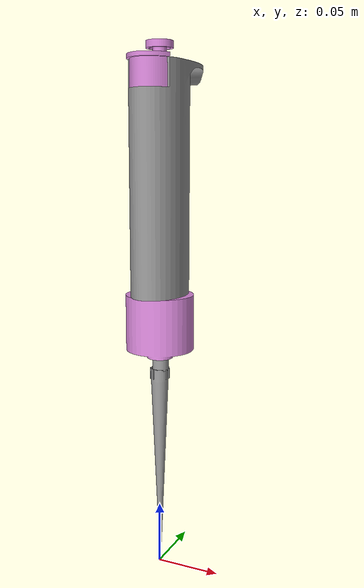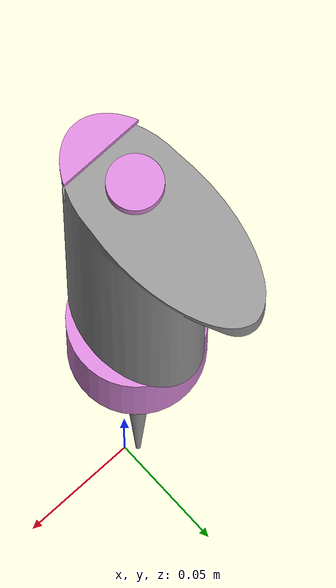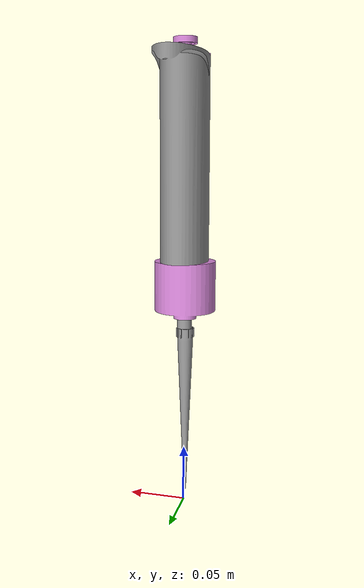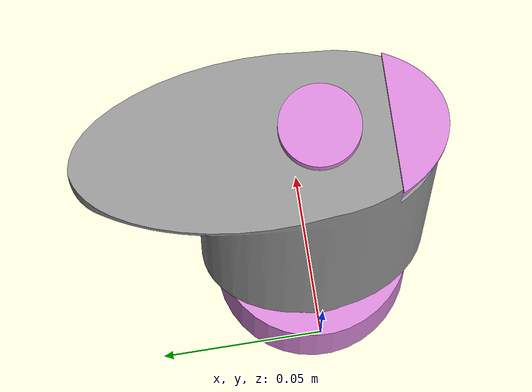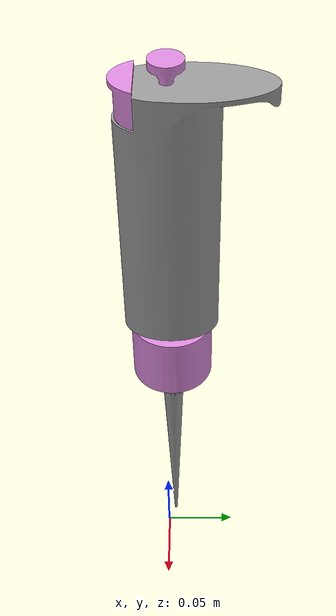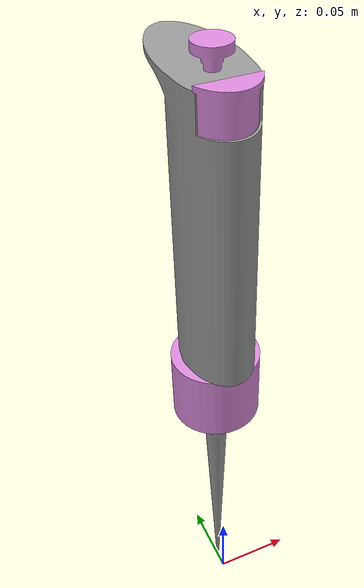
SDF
<?xml version='1.0'?>
<sdf version='1.7'>
    <model name='tip_dispenser'>
      <link name='pusher'>
        <inertial>
          <mass>0.05</mass>
          <inertia>
            <ixx>0.166667</ixx>
            <ixy>0</ixy>
            <ixz>0</ixz>
            <iyy>0.166667</iyy>
            <iyz>0</iyz>
            <izz>0.166667</izz>
          </inertia>
          <pose>0 0 0 0 -0 0</pose>
        </inertial>
        <pose>0.00347 0.001633 0.023543 0 -0 0</pose>
        <self_collide>0</self_collide>
        <enable_wind>0</enable_wind>
        <kinematic>0</kinematic>
        <visual name='visual'>
          <pose>0 0 0 0 -0 0</pose>
          <geometry>
            <mesh>
              <uri>model://tip_dispenser/meshes/tip_remover.stl</uri>
              <scale>1 1 1</scale>
            </mesh>
          </geometry>
          <material>
            <lighting>1</lighting>
            <script>
              <uri>file://media/materials/scripts/gazebo.material</uri>
              <name>Gazebo/Grey</name>
            </script>
            <ambient>0.863 0.541 0.867 1</ambient>
            <diffuse>0.863 0.541 0.867 1</diffuse>
            <specular>0 0 0 1</specular>
            <emissive>0 0 0 1</emissive>
          </material>
          <pose>0 0 0 0 -0 0</pose>
          <transparency>0</transparency>
          <cast_shadows>1</cast_shadows>
        </visual>
        <collision name='collision'>
          <laser_retro>0</laser_retro>
          <max_contacts>0</max_contacts>
          <pose>0 0 0 0 -0 0</pose>
          <geometry>
            <mesh>
              <uri>model://tip_dispenser/meshes/tip_remover.stl</uri>
              <scale>1 1 1</scale>
            </mesh>
          </geometry>
          <surface>
            <friction>
              <ode>
                <mu>1</mu>
                <mu2>1</mu2>
                <fdir1>0 0 0</fdir1>
                <slip1>0</slip1>
                <slip2>0</slip2>
              </ode>
              <torsional>
                <coefficient>1</coefficient>
                <patch_radius>0</patch_radius>
                <surface_radius>0</surface_radius>
                <use_patch_radius>1</use_patch_radius>
                <ode>
                  <slip>0</slip>
                </ode>
              </torsional>
            </friction>
            <bounce>
              <restitution_coefficient>0</restitution_coefficient>
              <threshold>1e+06</threshold>
            </bounce>
            <contact>
              <collide_without_contact>0</collide_without_contact>
              <collide_without_contact_bitmask>1</collide_without_contact_bitmask>
              <collide_bitmask>1</collide_bitmask>
              <ode>
                <soft_cfm>0</soft_cfm>
                <soft_erp>0.2</soft_erp>
                <kp>1e+13</kp>
                <kd>1</kd>
                <max_vel>0.01</max_vel>
                <min_depth>0</min_depth>
              </ode>
              <bullet>
                <split_impulse>1</split_impulse>
                <split_impulse_penetration_threshold>-0.01</split_impulse_penetration_threshold>
                <soft_cfm>0</soft_cfm>
                <soft_erp>0.2</soft_erp>
                <kp>1e+13</kp>
                <kd>1</kd>
              </bullet>
            </contact>
          </surface>
        </collision>
      </link>
      <link name='body'>
        <inertial>
          <mass>0.1</mass>
          <inertia>
            <ixx>0.166667</ixx>
            <ixy>0</ixy>
            <ixz>0</ixz>
            <iyy>0.166667</iyy>
            <iyz>0</iyz>
            <izz>0.166667</izz>
          </inertia>
          <pose>0 0 0 0 -0 0</pose>
        </inertial>
        <pose>-0.000906 -0.000185 0.011704 0 -0 0</pose>
        <gravity>0</gravity>
        <self_collide>0</self_collide>
        <kinematic>0</kinematic>
        <enable_wind>0</enable_wind>
        <visual name='visual'>
          <pose>0 0 0 0 -0 0</pose>
          <geometry>
            <mesh>
              <uri>model://tip_dispenser/meshes/body.stl</uri>
              <scale>1 1 1</scale>
            </mesh>
          </geometry>
          <material>
            <lighting>1</lighting>
            <script>
              <uri>file://media/materials/scripts/gazebo.material</uri>
              <name>Gazebo/Grey</name>
            </script>
            <shader type='pixel'>
              <normal_map>__default__</normal_map>
            </shader>
            <ambient>0.965 0.961 0.957 1</ambient>
            <diffuse>0.7 0.7 0.7 1</diffuse>
            <specular>0.01 0.01 0.01 1</specular>
            <emissive>0 0 0 1</emissive>
          </material>
          <transparency>0</transparency>
          <cast_shadows>1</cast_shadows>
        </visual>
        <collision name='collision'>
          <laser_retro>0</laser_retro>
          <max_contacts>0</max_contacts>
          <pose>0 0 0 0 -0 0</pose>
          <geometry>
            <mesh>
              <uri>model://tip_dispenser/meshes/body.stl</uri>
              <scale>1 1 1</scale>
            </mesh>
          </geometry>
          <surface>
            <friction>
              <ode>
                <mu>1</mu>
                <mu2>1</mu2>
                <fdir1>0 0 0</fdir1>
                <slip1>0</slip1>
                <slip2>0</slip2>
              </ode>
              <torsional>
                <coefficient>1</coefficient>
                <patch_radius>0</patch_radius>
                <surface_radius>0</surface_radius>
                <use_patch_radius>1</use_patch_radius>
                <ode>
                  <slip>0</slip>
                </ode>
              </torsional>
            </friction>
            <bounce>
              <restitution_coefficient>0</restitution_coefficient>
              <threshold>1e+06</threshold>
            </bounce>
            <contact>
              <collide_without_contact>0</collide_without_contact>
              <collide_without_contact_bitmask>1</collide_without_contact_bitmask>
              <collide_bitmask>1</collide_bitmask>
              <ode>
                <soft_cfm>0</soft_cfm>
                <soft_erp>0.2</soft_erp>
                <kp>1e+13</kp>
                <kd>1</kd>
                <max_vel>0.01</max_vel>
                <min_depth>0</min_depth>
              </ode>
              <bullet>
                <split_impulse>1</split_impulse>
                <split_impulse_penetration_threshold>-0.01</split_impulse_penetration_threshold>
                <soft_cfm>0</soft_cfm>
                <soft_erp>0.2</soft_erp>
                <kp>1e+13</kp>
                <kd>1</kd>
              </bullet>
            </contact>
          </surface>
        </collision>
      </link>
      <link name='button'>
        <inertial>
          <mass>0.01</mass>
          <inertia>
            <ixx>0.166667</ixx>
            <ixy>0</ixy>
            <ixz>0</ixz>
            <iyy>0.166667</iyy>
            <iyz>0</iyz>
            <izz>0.166667</izz>
          </inertia>
          <pose>0 0 0 0 -0 0</pose>
        </inertial>
        <pose>-0.000892 -0.000516 0.108964 0 0 -2.90884</pose>
        <self_collide>0</self_collide>
        <enable_wind>0</enable_wind>
        <kinematic>0</kinematic>
        <visual name='visual'>
          <pose>0 0 0 0 -0 0</pose>
          <geometry>
            <mesh>
              <uri>model://tip_dispenser/meshes/button.stl</uri>
              <scale>1 1 1</scale>
            </mesh>
          </geometry>
          <material>
            <lighting>1</lighting>
            <script>
              <uri>file://media/materials/scripts/gazebo.material</uri>
              <name>Gazebo/Grey</name>
            </script>
            <ambient>0.863 0.541 0.867 1</ambient>
            <diffuse>0.863 0.541 0.867 1</diffuse>
            <specular>0 0 0 1</specular>
            <emissive>0 0 0 1</emissive>
          </material>
          <transparency>0</transparency>
          <cast_shadows>1</cast_shadows>
        </visual>
        <collision name='collision'>
          <laser_retro>0</laser_retro>
          <max_contacts>0</max_contacts>
          <pose>0 0 0 0 -0 0</pose>
          <geometry>
            <mesh>
              <uri>model://tip_dispenser/meshes/button.stl</uri>
              <scale>1 1 1</scale>
            </mesh>
          </geometry>
          <surface>
            <friction>
              <ode>
                <mu>1</mu>
                <mu2>1</mu2>
                <fdir1>0 0 0</fdir1>
                <slip1>0</slip1>
                <slip2>0</slip2>
              </ode>
              <torsional>
                <coefficient>1</coefficient>
                <patch_radius>0</patch_radius>
                <surface_radius>0</surface_radius>
                <use_patch_radius>1</use_patch_radius>
                <ode>
                  <slip>0</slip>
                </ode>
              </torsional>
            </friction>
            <bounce>
              <restitution_coefficient>0</restitution_coefficient>
              <threshold>1e+06</threshold>
            </bounce>
            <contact>
              <collide_without_contact>0</collide_without_contact>
              <collide_without_contact_bitmask>1</collide_without_contact_bitmask>
              <collide_bitmask>1</collide_bitmask>
              <ode>
                <soft_cfm>0</soft_cfm>
                <soft_erp>0.2</soft_erp>
                <kp>1e+13</kp>
                <kd>1</kd>
                <max_vel>0.01</max_vel>
                <min_depth>0</min_depth>
              </ode>
              <bullet>
                <split_impulse>1</split_impulse>
                <split_impulse_penetration_threshold>-0.01</split_impulse_penetration_threshold>
                <soft_cfm>0</soft_cfm>
                <soft_erp>0.2</soft_erp>
                <kp>1e+13</kp>
                <kd>1</kd>
              </bullet>
            </contact>
          </surface>
        </collision>
      </link>
      <link name='tip'>
        <inertial>
          <mass>0.01</mass>
          <inertia>
            <ixx>0.166667</ixx>
            <ixy>0</ixy>
            <ixz>0</ixz>
            <iyy>0.166667</iyy>
            <iyz>0</iyz>
            <izz>0.166667</izz>
          </inertia>
          <pose>0 0 0 0 -0 0</pose>
        </inertial>
        <pose>-0.001671 -0.000933 -0.144211 0 -0 0</pose>
        <gravity>0</gravity>
        <self_collide>0</self_collide>
        <kinematic>0</kinematic>
        <enable_wind>0</enable_wind>
        <visual name='visual'>
          <pose>0 0 0 0 -0 0</pose>
          <geometry>
            <mesh>
              <uri>model://tip_dispenser/meshes/tip.stl</uri>
              <scale>1 1 1</scale>
            </mesh>
          </geometry>
          <material>
            <lighting>1</lighting>
            <script>
              <uri>file://media/materials/scripts/gazebo.material</uri>
              <name>Gazebo/Grey</name>
            </script>
            <shader type='pixel'>
              <normal_map>__default__</normal_map>
            </shader>
            <ambient>0.3 0.3 0.3 1</ambient>
            <diffuse>0.7 0.7 0.7 1</diffuse>
            <specular>0.01 0.01 0.01 1</specular>
            <emissive>0 0 0 1</emissive>
          </material>
          <transparency>0</transparency>
          <cast_shadows>1</cast_shadows>
        </visual>
        <collision name='collision'>
          <laser_retro>0</laser_retro>
          <max_contacts>0</max_contacts>
          <pose>0 0 0 0 -0 0</pose>
          <geometry>
            <mesh>
              <uri>model://tip_dispenser/meshes/tip.stl</uri>
              <scale>1 1 1</scale>
            </mesh>
          </geometry>
          <surface>
            <friction>
              <ode>
                <mu>1</mu>
                <mu2>1</mu2>
                <fdir1>0 0 0</fdir1>
                <slip1>0</slip1>
                <slip2>0</slip2>
              </ode>
              <torsional>
                <coefficient>1</coefficient>
                <patch_radius>0</patch_radius>
                <surface_radius>0</surface_radius>
                <use_patch_radius>1</use_patch_radius>
                <ode>
                  <slip>0</slip>
                </ode>
              </torsional>
            </friction>
            <bounce>
              <restitution_coefficient>0</restitution_coefficient>
              <threshold>1e+06</threshold>
            </bounce>
            <contact>
              <collide_without_contact>0</collide_without_contact>
              <collide_without_contact_bitmask>1</collide_without_contact_bitmask>
              <collide_bitmask>1</collide_bitmask>
              <ode>
                <soft_cfm>0</soft_cfm>
                <soft_erp>0.2</soft_erp>
                <kp>1e+13</kp>
                <kd>1</kd>
                <max_vel>0.01</max_vel>
                <min_depth>0</min_depth>
              </ode>
              <bullet>
                <split_impulse>1</split_impulse>
                <split_impulse_penetration_threshold>-0.01</split_impulse_penetration_threshold>
                <soft_cfm>0</soft_cfm>
                <soft_erp>0.2</soft_erp>
                <kp>1e+13</kp>
                <kd>1</kd>
              </bullet>
            </contact>
          </surface>
        </collision>
      </link>
      <joint name='body_button' type='prismatic'>
        <parent>body</parent>
        <child>button</child>
        <pose>0 0 0 0 -0 0</pose>
        <axis>
          <xyz>0 0 1</xyz>
          <limit>
            <lower>-0.0023</lower>
            <upper>0</upper>
            <effort>-1</effort>
            <velocity>-1</velocity>
          </limit>
          <dynamics>
            <spring_reference>0</spring_reference>
            <spring_stiffness>0</spring_stiffness>
            <damping>0</damping>
            <friction>0</friction>
          </dynamics>
        </axis>
        <physics>
          <ode>
            <limit>
              <cfm>0</cfm>
              <erp>0.2</erp>
            </limit>
            <suspension>
              <cfm>0</cfm>
              <erp>0.2</erp>
            </suspension>
          </ode>
        </physics>
      </joint>
      <joint name='body_pusher' type='prismatic'>
        <parent>body</parent>
        <child>pusher</child>
        <pose>0 0 0 0 -0 0</pose>
        <axis>
          <xyz>0 0 1</xyz>
          <limit>
            <lower>-0.018</lower>
            <upper>0</upper>
            <effort>-1</effort>
            <velocity>-1</velocity>
          </limit>
          <dynamics>
            <spring_reference>0</spring_reference>
            <spring_stiffness>0</spring_stiffness>
            <damping>0</damping>
            <friction>0</friction>
          </dynamics>
        </axis>
        <physics>
          <ode>
            <limit>
              <cfm>0</cfm>
              <erp>0.2</erp>
            </limit>
            <suspension>
              <cfm>0</cfm>
              <erp>0.2</erp>
            </suspension>
          </ode>
        </physics>
      </joint>
      <plugin name="detach_plugin" filename="libDetachPlugin.so"/>
      <joint name='body_tip' type='prismatic'>
        <parent>body</parent>
        <child>tip</child>
        <pose>0 0 0 0 -0 0</pose>
        <axis>
          <xyz>1 0 1</xyz>
          <limit>
            <lower>-0</lower>
            <upper>0</upper>
            <effort>-1</effort>
            <velocity>-1</velocity>
          </limit>
          <dynamics>
            <spring_reference>0</spring_reference>
            <spring_stiffness>0</spring_stiffness>
            <damping>0</damping>
            <friction>0</friction>
          </dynamics>
        </axis>
        <physics>
          <ode>
            <limit>
              <cfm>0</cfm>
              <erp>0.2</erp>
            </limit>
            <suspension>
              <cfm>0</cfm>
              <erp>0.2</erp>
            </suspension>
          </ode>
        </physics>
      </joint>
      <static>0</static>
      <allow_auto_disable>1</allow_auto_disable>
      <pose>-0.000618 0.006409 0.264956 0 -0 0</pose>
    </model>
</sdf>
